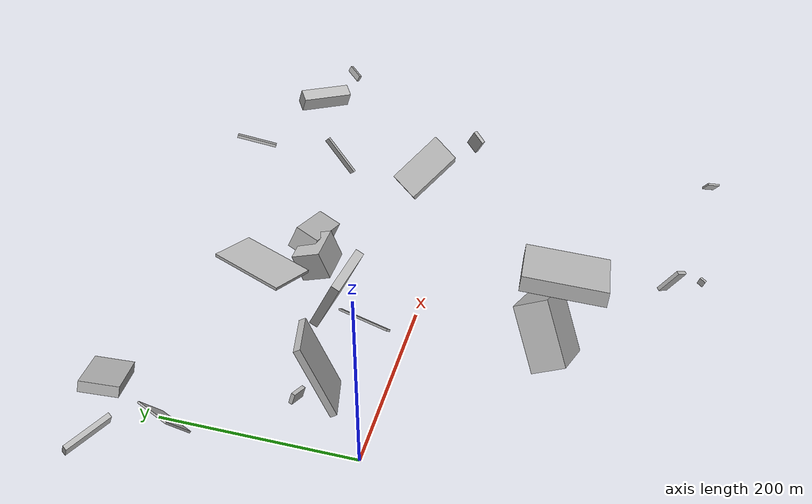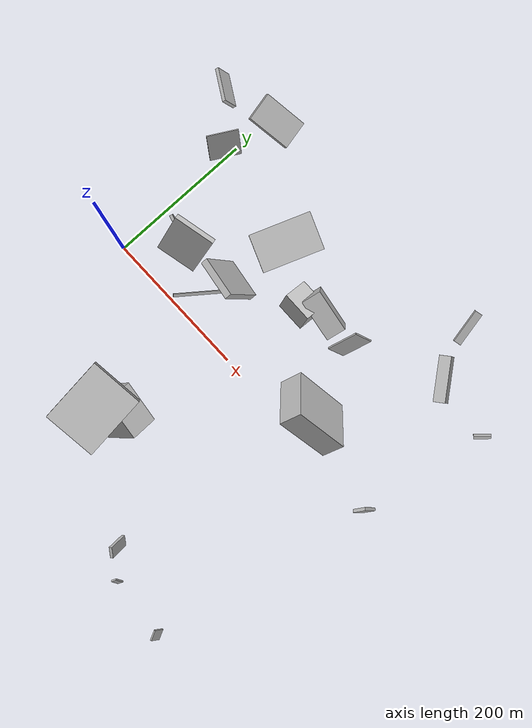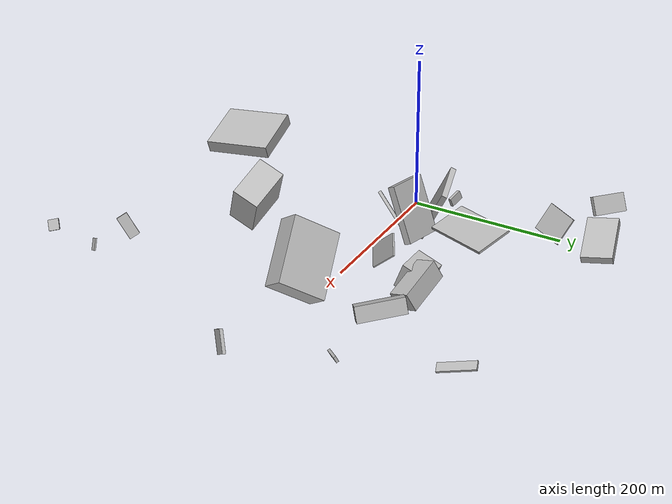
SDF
<sdf version="1.6">
 <world name="default">
  <scene>
   <sky><clouds><speed>12</speed></clouds></sky>
   <ambient>0.4 0.4 0.4 1</ambient>
   <background>0.7 0.7 0.7 1</background>
   <shadows>1</shadows>
  </scene>
  <gravity>0 0 -9.8066</gravity>
  <magnetic_field>6e-06 2.3e-05 -4.2e-05</magnetic_field>
  <physics default="0" name="default_physics" type="ode">
   <ode>
    <solver>
     <type>quick</type>
     <iters>10</iters>
     <sor>1.0</sor>
     <use_dynamic_moi_rescaling>0</use_dynamic_moi_rescaling>
    </solver>
    <constraints>
     <cfm>0</cfm>
     <erp>0.2</erp>
     <contact_max_correcting_vel>100</contact_max_correcting_vel>
     <contact_surface_layer>0.001</contact_surface_layer>
    </constraints>
   </ode>
   <max_step_size>0.004</max_step_size>
   <real_time_factor>1</real_time_factor>
   <real_time_update_rate>250</real_time_update_rate>
  </physics>
  <light name="sun" type="directional">
   <pose>0 0 10 0 0 0</pose>
   <diffuse>0.8 0.8 0.8 1</diffuse>
   <specular>0.2 0.2 0.2 1</specular>
   <attenuation>
    <range>1000</range>
    <constant>0.9</constant>
    <linear>0.01</linear>
    <quadratic>0.001</quadratic>
   </attenuation>
   <direction>-0.5 0.1 -0.9</direction>
  </light>
  <model name="building_1">
   <static>0</static>
   <pose>382.8756011682415 241.32808759595022 53.155403503878404 -0.5482753609927961 1.0417933422821273 2.8556966647523496</pose>
   <link name="link">
    <gravity>0</gravity>
    <pose>0 0 5.5 0 0 0</pose>
    <collision name="collision"><geometry><box><size>3 45 11</size></box></geometry></collision>
    <visual name="visual">
     <cast_shadows>0</cast_shadows>
     <geometry><box><size>3 45 11</size></box></geometry>
     <material>
      <script>
       <uri>model://HANNAS_wall/materials/scripts</uri>
       <uri>model://HANNAS_wall/materials/textures</uri>
       <name>vrc/HANNAS_wall</name>
      </script>
     </material>
    </visual>
   </link>
  </model>
  <model name="building_2">
   <static>0</static>
   <pose>163.69178663041185 -156.84706454794554 58.925807449456606 2.045719359917095 -0.4326419382535118 2.992810846556095</pose>
   <link name="link">
    <gravity>0</gravity>
    <pose>0 0 17.5 0 0 0</pose>
    <collision name="collision"><geometry><box><size>56 68 35</size></box></geometry></collision>
    <visual name="visual">
     <cast_shadows>0</cast_shadows>
     <geometry><box><size>56 68 35</size></box></geometry>
     <material>
      <script>
       <uri>model://HANNAS_wall/materials/scripts</uri>
       <uri>model://HANNAS_wall/materials/textures</uri>
       <name>vrc/HANNAS_wall</name>
      </script>
     </material>
    </visual>
   </link>
  </model>
  <model name="building_3">
   <static>0</static>
   <pose>60.595884066269065 62.01547505073893 43.825692354808794 -1.1553706984335967 -0.21169478636468358 -2.8923338496220103</pose>
   <link name="link">
    <gravity>0</gravity>
    <pose>0 0 3.5 0 0 0</pose>
    <collision name="collision"><geometry><box><size>55 79 7</size></box></geometry></collision>
    <visual name="visual">
     <cast_shadows>0</cast_shadows>
     <geometry><box><size>55 79 7</size></box></geometry>
     <material>
      <script>
       <uri>model://HANNAS_wall/materials/scripts</uri>
       <uri>model://HANNAS_wall/materials/textures</uri>
       <name>vrc/HANNAS_wall</name>
      </script>
     </material>
    </visual>
   </link>
  </model>
  <model name="building_4">
   <static>0</static>
   <pose>18.782448228607983 238.61849459218004 22.56061961873163 -1.2346694159733476 -1.135627327375345 -0.11769276517036666</pose>
   <link name="link">
    <gravity>0</gravity>
    <pose>0 0 19.5 0 0 0</pose>
    <collision name="collision"><geometry><box><size>11 61 39</size></box></geometry></collision>
    <visual name="visual">
     <cast_shadows>0</cast_shadows>
     <geometry><box><size>11 61 39</size></box></geometry>
     <material>
      <script>
       <uri>model://HANNAS_wall/materials/scripts</uri>
       <uri>model://HANNAS_wall/materials/textures</uri>
       <name>vrc/HANNAS_wall</name>
      </script>
     </material>
    </visual>
   </link>
  </model>
  <model name="building_5">
   <static>0</static>
   <pose>125.70439137351916 33.38818560339503 53.005731409462 -0.6111017108260668 -0.33936455844944197 -2.163475790537822</pose>
   <link name="link">
    <gravity>0</gravity>
    <pose>0 0 1.0 0 0 0</pose>
    <collision name="collision"><geometry><box><size>80 4 2</size></box></geometry></collision>
    <visual name="visual">
     <cast_shadows>0</cast_shadows>
     <geometry><box><size>80 4 2</size></box></geometry>
     <material>
      <script>
       <uri>model://HANNAS_wall/materials/scripts</uri>
       <uri>model://HANNAS_wall/materials/textures</uri>
       <name>vrc/HANNAS_wall</name>
      </script>
     </material>
    </visual>
   </link>
  </model>
  <model name="building_6">
   <static>0</static>
   <pose>296.63712301162263 17.553221374021348 119.19708943501584 -2.4334494295664992 -0.5657628467561314 -0.7776945632023451</pose>
   <link name="link">
    <gravity>0</gravity>
    <pose>0 0 40.0 0 0 0</pose>
    <collision name="collision"><geometry><box><size>60 30 80</size></box></geometry></collision>
    <visual name="visual">
     <cast_shadows>0</cast_shadows>
     <geometry><box><size>60 30 80</size></box></geometry>
     <material>
      <script>
       <uri>model://HANNAS_wall/materials/scripts</uri>
       <uri>model://HANNAS_wall/materials/textures</uri>
       <name>vrc/HANNAS_wall</name>
      </script>
     </material>
    </visual>
   </link>
  </model>
  <model name="building_7">
   <static>0</static>
   <pose>158.4742308737969 -193.24671689281007 127.59757407465477 -1.4731450876913392 0.24307726816626418 0.11134499373631308</pose>
   <link name="link">
    <gravity>0</gravity>
    <pose>0 0 40.0 0 0 0</pose>
    <collision name="collision"><geometry><box><size>66 15 80</size></box></geometry></collision>
    <visual name="visual">
     <cast_shadows>0</cast_shadows>
     <geometry><box><size>66 15 80</size></box></geometry>
     <material>
      <script>
       <uri>model://HANNAS_wall/materials/scripts</uri>
       <uri>model://HANNAS_wall/materials/textures</uri>
       <name>vrc/HANNAS_wall</name>
      </script>
     </material>
    </visual>
   </link>
  </model>
  <model name="building_8">
   <static>0</static>
   <pose>247.7237937425803 120.17792767969343 56.94470695233491 -2.7994248873976875 0.3299605450851977 -0.12198056098408915</pose>
   <link name="link">
    <gravity>0</gravity>
    <pose>0 0 12.0 0 0 0</pose>
    <collision name="collision"><geometry><box><size>57 26 24</size></box></geometry></collision>
    <visual name="visual">
     <cast_shadows>0</cast_shadows>
     <geometry><box><size>57 26 24</size></box></geometry>
     <material>
      <script>
       <uri>model://HANNAS_wall/materials/scripts</uri>
       <uri>model://HANNAS_wall/materials/textures</uri>
       <name>vrc/HANNAS_wall</name>
      </script>
     </material>
    </visual>
   </link>
  </model>
  <model name="building_9">
   <static>0</static>
   <pose>217.87160310080148 107.2001431140626 26.451116779281023 -0.35549261469046267 -0.0010438519808965128 -0.018712788464627192</pose>
   <link name="link">
    <gravity>0</gravity>
    <pose>0 0 16.0 0 0 0</pose>
    <collision name="collision"><geometry><box><size>39 32 32</size></box></geometry></collision>
    <visual name="visual">
     <cast_shadows>0</cast_shadows>
     <geometry><box><size>39 32 32</size></box></geometry>
     <material>
      <script>
       <uri>model://HANNAS_wall/materials/scripts</uri>
       <uri>model://HANNAS_wall/materials/textures</uri>
       <name>vrc/HANNAS_wall</name>
      </script>
     </material>
    </visual>
   </link>
  </model>
  <model name="building_10">
   <static>0</static>
   <pose>402.2777322597671 164.2237507674472 105.53083930867983 0.35551513872109747 0.12115443402623823 -0.8942586258520663</pose>
   <link name="link">
    <gravity>0</gravity>
    <pose>0 0 9.0 0 0 0</pose>
    <collision name="collision"><geometry><box><size>54 14 18</size></box></geometry></collision>
    <visual name="visual">
     <cast_shadows>0</cast_shadows>
     <geometry><box><size>54 14 18</size></box></geometry>
     <material>
      <script>
       <uri>model://HANNAS_wall/materials/scripts</uri>
       <uri>model://HANNAS_wall/materials/textures</uri>
       <name>vrc/HANNAS_wall</name>
      </script>
     </material>
    </visual>
   </link>
  </model>
  <model name="building_11">
   <static>0</static>
   <pose>282.6110332418677 -258.79585238814275 48.847107271720915 -2.732416028228709 0.4447762837230873 -0.6703217136448967</pose>
   <link name="link">
    <gravity>0</gravity>
    <pose>0 0 15.0 0 0 0</pose>
    <collision name="collision"><geometry><box><size>14 4 30</size></box></geometry></collision>
    <visual name="visual">
     <cast_shadows>0</cast_shadows>
     <geometry><box><size>14 4 30</size></box></geometry>
     <material>
      <script>
       <uri>model://HANNAS_wall/materials/scripts</uri>
       <uri>model://HANNAS_wall/materials/textures</uri>
       <name>vrc/HANNAS_wall</name>
      </script>
     </material>
    </visual>
   </link>
  </model>
  <model name="building_12">
   <static>0</static>
   <pose>-20.44649354146453 168.89237135028955 17.544610228521613 1.717139774543677 -0.9298048799467001 2.541144188550702</pose>
   <link name="link">
    <gravity>0</gravity>
    <pose>0 0 21.5 0 0 0</pose>
    <collision name="collision"><geometry><box><size>37 2 43</size></box></geometry></collision>
    <visual name="visual">
     <cast_shadows>0</cast_shadows>
     <geometry><box><size>37 2 43</size></box></geometry>
     <material>
      <script>
       <uri>model://HANNAS_wall/materials/scripts</uri>
       <uri>model://HANNAS_wall/materials/textures</uri>
       <name>vrc/HANNAS_wall</name>
      </script>
     </material>
    </visual>
   </link>
  </model>
  <model name="building_13">
   <static>0</static>
   <pose>27.501884316394897 69.95609901268378 33.611736459176406 -0.16668853067700923 -0.3124242926678686 2.8889774324503295</pose>
   <link name="link">
    <gravity>0</gravity>
    <pose>0 0 5.5 0 0 0</pose>
    <collision name="collision"><geometry><box><size>18 4 11</size></box></geometry></collision>
    <visual name="visual">
     <cast_shadows>0</cast_shadows>
     <geometry><box><size>18 4 11</size></box></geometry>
     <material>
      <script>
       <uri>model://HANNAS_wall/materials/scripts</uri>
       <uri>model://HANNAS_wall/materials/textures</uri>
       <name>vrc/HANNAS_wall</name>
      </script>
     </material>
    </visual>
   </link>
  </model>
  <model name="building_14">
   <static>0</static>
   <pose>307.44225535012345 -282.51474016119937 22.929965195298717 -2.752615564312878 0.3433523679706072 -1.9716918258146405</pose>
   <link name="link">
    <gravity>0</gravity>
    <pose>0 0 7.5 0 0 0</pose>
    <collision name="collision"><geometry><box><size>7 2 15</size></box></geometry></collision>
    <visual name="visual">
     <cast_shadows>0</cast_shadows>
     <geometry><box><size>7 2 15</size></box></geometry>
     <material>
      <script>
       <uri>model://HANNAS_wall/materials/scripts</uri>
       <uri>model://HANNAS_wall/materials/textures</uri>
       <name>vrc/HANNAS_wall</name>
      </script>
     </material>
    </visual>
   </link>
  </model>
  <model name="building_15">
   <static>0</static>
   <pose>152.91390808712305 146.38109672998326 79.84256262043066 2.9119792282259245 0.031779221433955396 -1.9415183588371214</pose>
   <link name="link">
    <gravity>0</gravity>
    <pose>0 0 1.5 0 0 0</pose>
    <collision name="collision"><geometry><box><size>80 49 3</size></box></geometry></collision>
    <visual name="visual">
     <cast_shadows>0</cast_shadows>
     <geometry><box><size>80 49 3</size></box></geometry>
     <material>
      <script>
       <uri>model://HANNAS_wall/materials/scripts</uri>
       <uri>model://HANNAS_wall/materials/textures</uri>
       <name>vrc/HANNAS_wall</name>
      </script>
     </material>
    </visual>
   </link>
  </model>
  <model name="building_16">
   <static>0</static>
   <pose>138.36762178463397 60.37146990463129 74.22403686114687 0.20208559571448959 -1.1248999143254008 -1.9160494994775996</pose>
   <link name="link">
    <gravity>0</gravity>
    <pose>0 0 4.5 0 0 0</pose>
    <collision name="collision"><geometry><box><size>71 53 9</size></box></geometry></collision>
    <visual name="visual">
     <cast_shadows>0</cast_shadows>
     <geometry><box><size>71 53 9</size></box></geometry>
     <material>
      <script>
       <uri>model://HANNAS_wall/materials/scripts</uri>
       <uri>model://HANNAS_wall/materials/textures</uri>
       <name>vrc/HANNAS_wall</name>
      </script>
     </material>
    </visual>
   </link>
  </model>
  <model name="building_17">
   <static>0</static>
   <pose>-40.244059810858744 225.6658570812086 36.32446819761801 1.809442397475741 -1.004680364061261 -2.3134402665063187</pose>
   <link name="link">
    <gravity>0</gravity>
    <pose>0 0 24.5 0 0 0</pose>
    <collision name="collision"><geometry><box><size>24 5 49</size></box></geometry></collision>
    <visual name="visual">
     <cast_shadows>0</cast_shadows>
     <geometry><box><size>24 5 49</size></box></geometry>
     <material>
      <script>
       <uri>model://HANNAS_wall/materials/scripts</uri>
       <uri>model://HANNAS_wall/materials/textures</uri>
       <name>vrc/HANNAS_wall</name>
      </script>
     </material>
    </visual>
   </link>
  </model>
  <model name="building_18">
   <static>0</static>
   <pose>479.5095395870416 149.09506482215986 102.71587898429883 2.6766049391471256 0.1882850962011724 -2.316399245982626</pose>
   <link name="link">
    <gravity>0</gravity>
    <pose>0 0 3.5 0 0 0</pose>
    <collision name="collision"><geometry><box><size>20 3 7</size></box></geometry></collision>
    <visual name="visual">
     <cast_shadows>0</cast_shadows>
     <geometry><box><size>20 3 7</size></box></geometry>
     <material>
      <script>
       <uri>model://HANNAS_wall/materials/scripts</uri>
       <uri>model://HANNAS_wall/materials/textures</uri>
       <name>vrc/HANNAS_wall</name>
      </script>
     </material>
    </visual>
   </link>
  </model>
  <model name="building_19">
   <static>0</static>
   <pose>385.2545448117966 -276.8005725607315 89.79214509437386 -2.8604611592256513 -0.5754408368353863 0.2841050150403175</pose>
   <link name="link">
    <gravity>0</gravity>
    <pose>0 0 6.5 0 0 0</pose>
    <collision name="collision"><geometry><box><size>2 13 13</size></box></geometry></collision>
    <visual name="visual">
     <cast_shadows>0</cast_shadows>
     <geometry><box><size>2 13 13</size></box></geometry>
     <material>
      <script>
       <uri>model://HANNAS_wall/materials/scripts</uri>
       <uri>model://HANNAS_wall/materials/textures</uri>
       <name>vrc/HANNAS_wall</name>
      </script>
     </material>
    </visual>
   </link>
  </model>
  <model name="building_20">
   <static>0</static>
   <pose>452.51887893594096 -5.574452642461376 48.98039811456354 1.7093105468289356 0.5501123136765542 -2.127106677035055</pose>
   <link name="link">
    <gravity>0</gravity>
    <pose>0 0 2.0 0 0 0</pose>
    <collision name="collision"><geometry><box><size>16 27 4</size></box></geometry></collision>
    <visual name="visual">
     <cast_shadows>0</cast_shadows>
     <geometry><box><size>16 27 4</size></box></geometry>
     <material>
      <script>
       <uri>model://HANNAS_wall/materials/scripts</uri>
       <uri>model://HANNAS_wall/materials/textures</uri>
       <name>vrc/HANNAS_wall</name>
      </script>
     </material>
    </visual>
   </link>
  </model>
  <model name="building_21">
   <static>0</static>
   <pose>306.3013426162023 114.88999333604141 106.84136551737335 -0.5121132619582748 -0.740043857339642 1.2170631379562613</pose>
   <link name="link">
    <gravity>0</gravity>
    <pose>0 0 13.0 0 0 0</pose>
    <collision name="collision"><geometry><box><size>44 2 26</size></box></geometry></collision>
    <visual name="visual">
     <cast_shadows>0</cast_shadows>
     <geometry><box><size>44 2 26</size></box></geometry>
     <material>
      <script>
       <uri>model://HANNAS_wall/materials/scripts</uri>
       <uri>model://HANNAS_wall/materials/textures</uri>
       <name>vrc/HANNAS_wall</name>
      </script>
     </material>
    </visual>
   </link>
  </model>
 </world>
</sdf>
